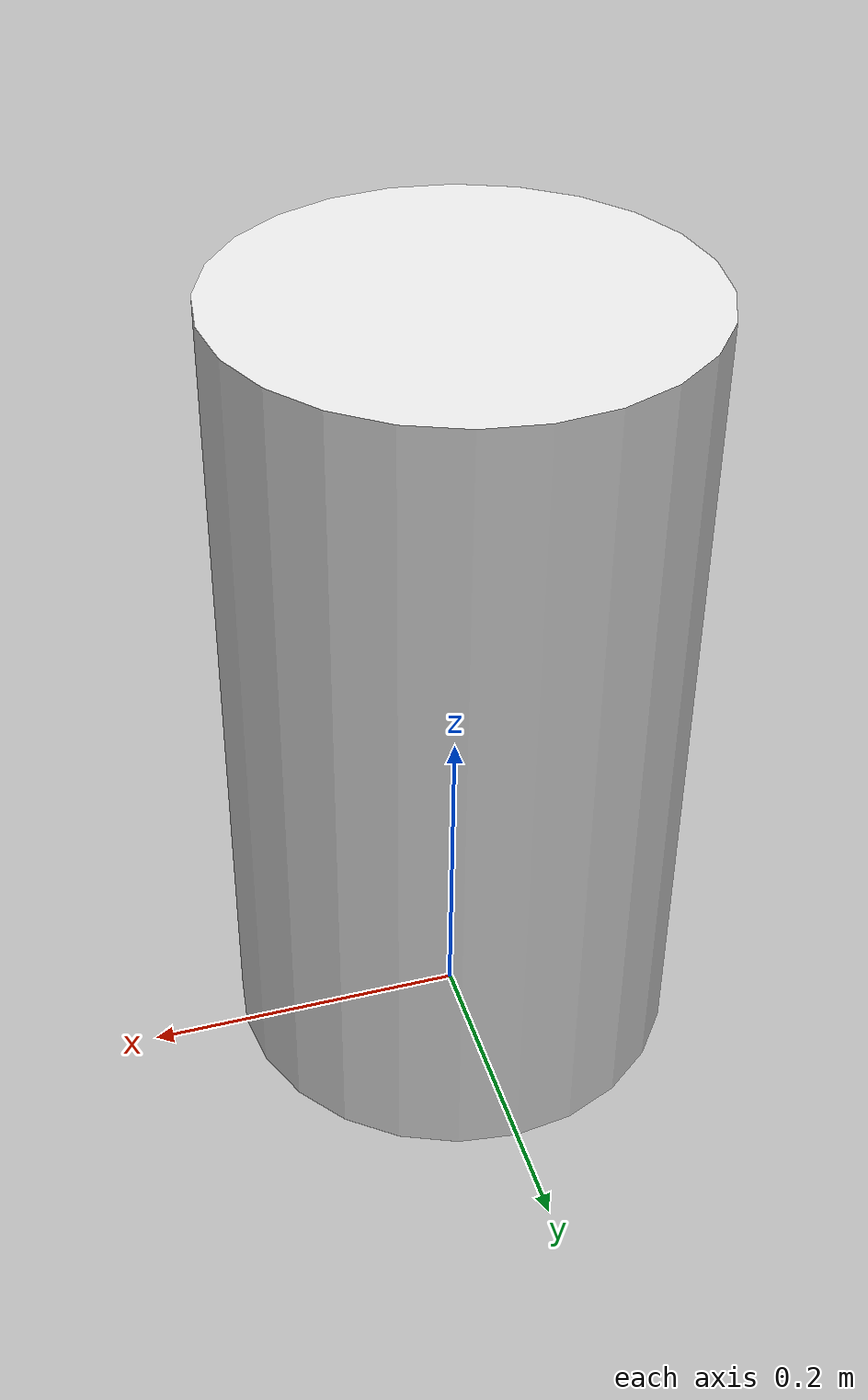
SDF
<?xml version="1.0"?>
<sdf version="1.7">

  <!-- world->ghost_body_y->ghost_body_z_sphere-->
  <model name="box_xy">
    <!-- Ghost body of negligible mass. -->
    <link name="ghost_body_x">
      <inertial>
        <mass>1.0e-6</mass>
        <inertia>
          <ixx>1.0e-6</ixx>
          <ixy>0</ixy>
          <ixz>0</ixz>
          <iyy>1.0e-6</iyy>
          <iyz>0</iyz>
          <izz>1.0e-6</izz>
        </inertia>
      </inertial>
    </link>

    <link name="ghost_body_y">
      <inertial>
        <mass>1.0e-6</mass>
        <inertia>
          <ixx>1.0e-6</ixx>
          <ixy>0</ixy>
          <ixz>0</ixz>
          <iyy>1.0e-6</iyy>
          <iyz>0</iyz>
          <izz>1.0e-6</izz>
        </inertia>
      </inertial>
    </link>

    <joint name="x_slider" type="prismatic">
      <parent>world</parent>
      <child>ghost_body_x</child>
      <axis>
        <xyz>1 0 0</xyz>
        <!-- Drake attaches an actuator to all joints with a non-zero effort
             limit. We do not want an actuator for this joint. -->
        <limit>
          <effort>0</effort>
        </limit>
        <dynamics>
          <friction>3</friction>
        </dynamics>
      </axis>
    </joint>

    <joint name="y_slider" type="prismatic">
      <parent>ghost_body_x</parent>
      <child>ghost_body_y</child>
      <axis>
        <xyz>0 1 0</xyz>
        <!-- Drake attaches an actuator to all joints with a non-zero effort
             limit. We do not want an actuator for this joint and therefore we
             set a zero effort limit. -->
        <limit>
          <effort>0</effort>
        </limit>
        <dynamics>
          <friction>3</friction>
        </dynamics>
      </axis>
    </joint>

    <joint name="rotation" type="revolute">
      <parent>ghost_body_y</parent>
      <child>box</child>
      <axis>
        <xyz>0 0 1</xyz>
        <!-- Drake attaches an actuator to all joints with a non-zero effort
             limit. We do not want an actuator for this joint and therefore we
             set a zero effort limit. -->
        <limit>
          <effort>0</effort>
        </limit>
        <dynamics>
          <friction>0.1</friction>
        </dynamics>
      </axis>
    </joint>

    <!-- The model for a solid box of uniform density. -->
    <link name="box">
      <pose>0 0 0.25 0 0 0 </pose>
      <inertial>
        <mass>1.0</mass>
        <inertia>
          <ixx>0.042</ixx>
          <ixy>0</ixy>
          <ixz>0</ixz>
          <iyy>0.042</iyy>
          <iyz>0</iyz>
          <izz>0.042</izz>
        </inertia>
      </inertial>

      <visual name="box_visual">
        <geometry>
          <cylinder>
            <length>0.50</length>
            <radius>0.14</radius>
          </cylinder>
        </geometry>
        <material>
          <diffuse>0.9 0.9 0.9 0.9</diffuse>
        </material>
      </visual>

      <collision name="collision">
        <geometry>
          <cylinder>
            <length>0.50</length>
            <radius>0.14</radius>
          </cylinder>
        </geometry>
        <surface>
          <friction>
            <ode>
              <mu>0.5</mu>
              <mu2>0.5</mu2>
            </ode>
          </friction>
        </surface>
      </collision>

    </link>
  </model>
</sdf>
